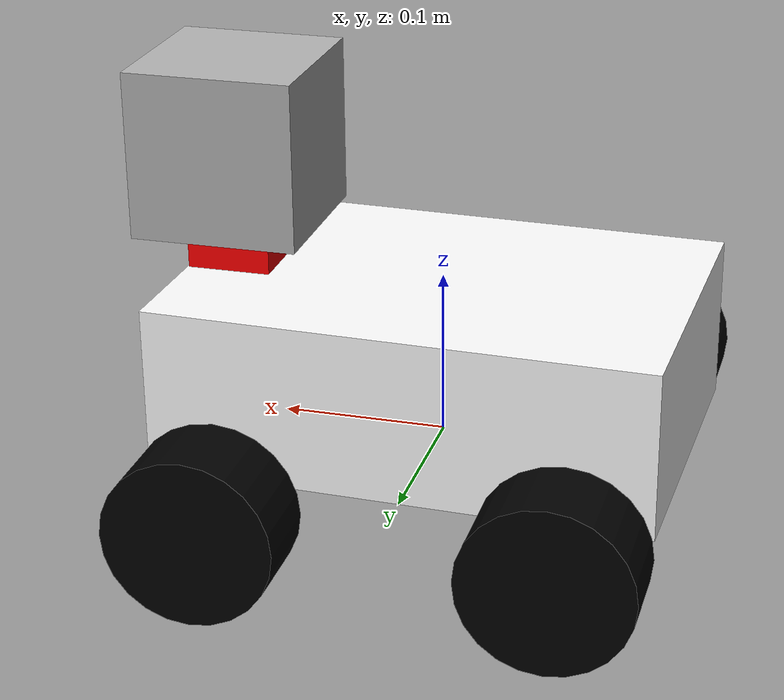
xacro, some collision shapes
<?xml version="1.0"?>

<robot xmlns:xacro="http://www.ros.org/wiki/xacro"
 	xmlns:sensor="http://playerstage.sourceforge.net/gazebo/xmlschema/#sensor"
    	xmlns:controller="http://playerstage.sourceforge.net/gazebo/xmlschema/#controller"
    	xmlns:interface="http://playerstage.sourceforge.net/gazebo/xmlschema/#interface"
	name="robot1_xacro">

	<xacro:property name="length_wheel" value="0.05" />
	<xacro:property name="radius_wheel" value="0.05" />
	<xacro:property name="camera_link" value="0.05" />
	<xacro:macro name="default_inertial" params="mass">
               <inertial>
                       <mass value="${mass}" />
                       <inertia ixx="1.0" ixy="0.0" ixz="0.0"
                                iyy="1.0" iyz="0.0"
                                izz="1.0" />
               </inertial>
	</xacro:macro>

	<link name="base_footprint">
   		<visual>
			<geometry>
      				<box size="0.001 0.001 0.001"/>
     			</geometry>
			<origin rpy="0 0 0" xyz="0 0 0"/>
   		</visual>
 	</link>
 	<xacro:include filename="$(find robot1_description)/urdf/robot.gazebo" />

	<gazebo reference="base_footprint">
		<material>Gazebo/Green</material>
		<turnGravityOff>false</turnGravityOff>
	</gazebo>

	<joint name="base_footprint_joint" type="fixed">
		<origin xyz="0 0 0" />
		<parent link="base_footprint" />
		<child link="base_link" />
	</joint>

	<link name="base_link">
   		<visual>
			<geometry>
      				<box size="0.2 .3 .1"/>
     			</geometry>
			<origin rpy="0 0 1.54" xyz="0 0 0.05"/>
			<material name="white">
				<color rgba="1 1 1 1"/>
			</material>
   		</visual>
		<collision>
			<geometry>
       				<box size="0.2 .3 0.1"/>
			</geometry>
		</collision>
		<xacro:default_inertial mass="10"/>
 	</link>

 	<link name="wheel_1">
   		<visual>
     			<geometry>
       				<cylinder length="${length_wheel}" radius="${radius_wheel}"/>
     			</geometry>
			<origin rpy="0 0 0" xyz="0 0 0"/>
   			<material name="black">
				<color rgba="0 0 0 1"/>
			</material>
		</visual>
		<collision>
			<geometry>
       				<cylinder length="${length_wheel}" radius="${radius_wheel}"/>
			</geometry>
		</collision>
		<xacro:default_inertial mass="1"/>
 	</link>

 	<link name="wheel_2">
   		<visual>
     			<geometry>
       				<cylinder length="${length_wheel}" radius="${radius_wheel}"/>
     			</geometry>
			<origin rpy="0 0 0" xyz="0 0 0"/>
   			<material name="black"/>
   		</visual>
		<collision>
			<geometry>
       				<cylinder length="${length_wheel}" radius="${radius_wheel}"/>
			</geometry>
		</collision>
		<xacro:default_inertial mass="1"/>

 	</link>

 	<link name="wheel_3">
   		<visual>
     			<geometry>
       				<cylinder length="${length_wheel}" radius="${radius_wheel}"/>
     			</geometry>

			<origin rpy="0 0 0" xyz="0 0 0"/>
   			<material name="black"/>
   		</visual>
		<collision>
			<geometry>
       				<cylinder length="${length_wheel}" radius="${radius_wheel}"/>
			</geometry>
		</collision>
		<xacro:default_inertial mass="1"/>
 	</link>

 	<link name="wheel_4">
   		<visual>
     			<geometry>
       				<cylinder length="${length_wheel}" radius="${radius_wheel}"/>
     			</geometry>
			<origin rpy="0 0 0" xyz="0 0 0" />
   			<material name="black"/>
   		</visual>
		<collision>
			<geometry>
       				<cylinder length="${length_wheel}" radius="${radius_wheel}"/>
			</geometry>
		</collision>
		<xacro:default_inertial mass="1"/>

 	</link>

 <joint name="base_to_wheel1" type="continuous">
   <parent link="base_link"/>
   <child link="wheel_1"/>
   <origin rpy="-1.5707 0 0" xyz="0.1 0.15 0"/>
   <axis xyz="0 0 1" />
 </joint>

 <joint name="base_to_wheel2" type="continuous">
   <axis xyz="0 0 1" />
   <anchor xyz="0 0 0" />
   <limit effort="100" velocity="100" />
   <parent link="base_link"/>
   <child link="wheel_2"/>
   <origin rpy="-1.5707 0 0" xyz="-0.1 0.15 0"/>
</joint>

 <joint name="base_to_wheel3" type="continuous">
   <parent link="base_link"/>
   <axis xyz="0 0 1" />
   <child link="wheel_3"/>
   <origin rpy="-1.5707 0 0" xyz="0.1 -0.15 0"/>
 </joint>

 <joint name="base_to_wheel4" type="continuous">
   <parent link="base_link"/>
   <axis xyz="0 0 1" />
   <child link="wheel_4"/>
   <origin rpy="-1.5707 0 0" xyz="-0.1 -0.15 0"/>
 </joint>
  <!-- Camera joint -->
  <joint name="camera_joint" type="fixed">
    <axis xyz="0 1 0" />
    <origin xyz="0.125 0 0.125" rpy="0 0 0"/>
    <parent link="base_link"/>
    <child link="camera_link"/>
  </joint>

  <!-- Camera -->
  <link name="camera_link">
    <collision>
      <origin xyz="0 0 0" rpy="0 0 0"/>
      <geometry>
	<box size="0.05 0.05 0.05"/>
      </geometry>
    </collision>

    <visual>
      <origin xyz="0 0 0" rpy="0 0 0"/>
      <geometry>
	<box size="0.05 0.05 0.05"/>
      </geometry>
      <material name="red">
	<color rgba="1 0 0 1"/>
      </material>
    </visual>

    <inertial>
      <mass value="1e-5" />
      <origin xyz="0 0 0" rpy="0 0 0"/>
      <inertia ixx="1e-6" ixy="0" ixz="0" iyy="1e-6" iyz="0" izz="1e-6" />
    </inertial>
  </link>

  <!-- Hokuyo joint -->
  <joint name="hokuyo_joint" type="fixed">
    <origin xyz="0.125 0.0 0.175" rpy="0 0 0"/>
    <parent link="base_link"/>
    <axis xyz="0 1 0" />
    <child link="hokuyo_link"/>
  </joint>

  <!-- Hokuyo Laser -->
  <link name="hokuyo_link">
    <collision>
      <origin xyz="0 0 0" rpy="0 0 0"/>
      <geometry>
	<box size="0.1 0.1 0.1"/>
      </geometry>
    </collision>

    <visual>
      <origin xyz="0 0 0" rpy="0 0 0"/>
      <geometry>
        <mesh filename="package://robot1_description/meshes/hokuyo.dae"/>
      </geometry>
    </visual>

    <inertial>
      <mass value="1e-5" />
      <origin xyz="0 0 0" rpy="0 0 0"/>
      <inertia ixx="1e-6" ixy="0" ixz="0" iyy="1e-6" iyz="0" izz="1e-6" />
    </inertial>
  </link>

  <!-- Drive controller -->
<gazebo>
  <plugin name="skid_steer_drive_controller" filename="libgazebo_ros_skid_steer_drive.so">
    <updateRate>100.0</updateRate>
    <robotNamespace>/</robotNamespace>
    <leftFrontJoint>base_to_wheel1</leftFrontJoint>
    <rightFrontJoint>base_to_wheel3</rightFrontJoint>
    <leftRearJoint>base_to_wheel2</leftRearJoint>
    <rightRearJoint>base_to_wheel4</rightRearJoint>
    <wheelSeparation>4</wheelSeparation>
    <wheelDiameter>0.1</wheelDiameter>
    <robotBaseFrame>base_footprint</robotBaseFrame>
    <torque>1</torque>
    <topicName>cmd_vel</topicName>
     <commandTopic>cmd_vel</commandTopic>
    <odometryTopic>odom</odometryTopic>
    <odometryFrame>odom</odometryFrame>
    <broadcastTF>true</broadcastTF>
  </plugin>
</gazebo>

</robot>
